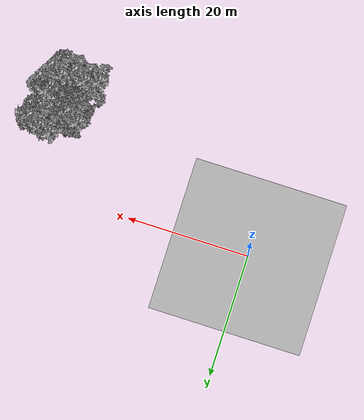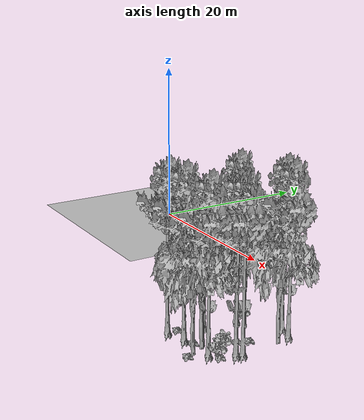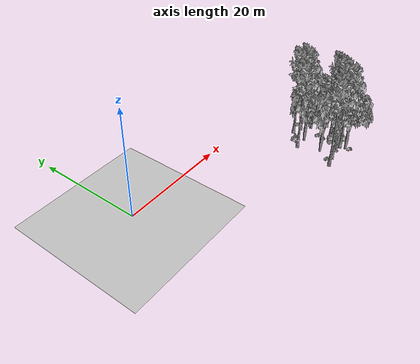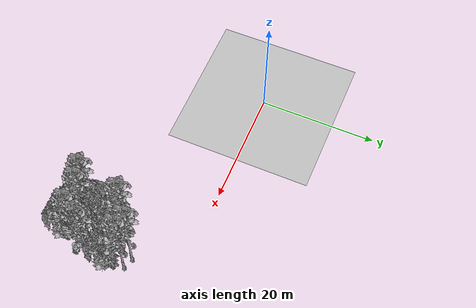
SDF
<sdf version="1.7">
 <world name="default">
  <model name="ground_plane">
   <static>1</static>
   <link name="link">
    <collision name="collision">
     <pose>-50 0 0 0 -0 0</pose>
     <geometry><plane><normal>0 0 1</normal><size>80 80</size></plane></geometry>
     <surface><contact><ode><min_depth>0.01</min_depth><max_vel>0</max_vel></ode></contact></surface>
    </collision>
    <visual name="grass">
     <cast_shadows>0</cast_shadows>
     <geometry>
      <mesh>
       <scale>0.46714285714285714 0.46714285714285714 0.1</scale>
       <uri>file://grass_plane/meshes/grass_plane.dae</uri>
      </mesh>
     </geometry>
    </visual>
   </link>
  </model>
  <model name="Tree 11">
   <static>1</static>
   <pose>36.81946621899988 -17.252960299036893 0 1.57079 -0 0</pose>
   <link name="link">
    <collision name="collision">
     <geometry><mesh><scale>3.5 5 3.5</scale><uri>model://tree_9/meshes/tree_9.obj</uri></mesh></geometry>
    </collision>
    <visual name="visual">
     <geometry><mesh><scale>3.5 5 3.5</scale><uri>model://tree_9/meshes/tree_9.obj</uri></mesh></geometry>
    </visual>
   </link>
  </model>
  <model name="Tree 36">
   <static>1</static>
   <pose>37.544806985473684 -8.624954095828592 0 1.57079 -0 0</pose>
   <link name="link">
    <collision name="collision">
     <geometry><mesh><scale>3.5 5 3.5</scale><uri>model://tree_9/meshes/tree_9.obj</uri></mesh></geometry>
    </collision>
    <visual name="visual">
     <geometry><mesh><scale>3.5 5 3.5</scale><uri>model://tree_9/meshes/tree_9.obj</uri></mesh></geometry>
    </visual>
   </link>
  </model>
  <model name="Tree 78">
   <static>1</static>
   <pose>30.828847995865956 -18.110764033775723 0 1.57079 -0 0</pose>
   <link name="link">
    <collision name="collision">
     <geometry><mesh><scale>3.5 5 3.5</scale><uri>model://tree_9/meshes/tree_9.obj</uri></mesh></geometry>
    </collision>
    <visual name="visual">
     <geometry><mesh><scale>3.5 5 3.5</scale><uri>model://tree_9/meshes/tree_9.obj</uri></mesh></geometry>
    </visual>
   </link>
  </model>
  <model name="Tree 79">
   <static>1</static>
   <pose>35.41900157429019 -17.171713973050878 0 1.57079 -0 0</pose>
   <link name="link">
    <collision name="collision">
     <geometry><mesh><scale>3.5 5 3.5</scale><uri>model://tree_2/meshes/tree_2.obj</uri></mesh></geometry>
    </collision>
    <visual name="visual">
     <geometry><mesh><scale>3.5 5 3.5</scale><uri>model://tree_2/meshes/tree_2.obj</uri></mesh></geometry>
    </visual>
   </link>
  </model>
  <model name="Tree 237">
   <static>1</static>
   <pose>35.78207238451293 -8.078938965559395 0 1.57079 -0 0</pose>
   <link name="link">
    <collision name="collision">
     <geometry><mesh><scale>3.5 5 3.5</scale><uri>model://tree_9/meshes/tree_9.obj</uri></mesh></geometry>
    </collision>
    <visual name="visual">
     <geometry><mesh><scale>3.5 5 3.5</scale><uri>model://tree_9/meshes/tree_9.obj</uri></mesh></geometry>
    </visual>
   </link>
  </model>
  <model name="Tree 245">
   <static>1</static>
   <pose>36.08224054830232 -18.51610686013272 0 1.57079 -0 0</pose>
   <link name="link">
    <collision name="collision">
     <geometry><mesh><scale>3.5 5 3.5</scale><uri>model://tree_2/meshes/tree_2.obj</uri></mesh></geometry>
    </collision>
    <visual name="visual">
     <geometry><mesh><scale>3.5 5 3.5</scale><uri>model://tree_2/meshes/tree_2.obj</uri></mesh></geometry>
    </visual>
   </link>
  </model>
  <model name="Tree 288">
   <static>1</static>
   <pose>38.21761933081663 -10.439752754390543 0 1.57079 -0 0</pose>
   <link name="link">
    <collision name="collision">
     <geometry><mesh><scale>3.5 5 3.5</scale><uri>model://tree_2/meshes/tree_2.obj</uri></mesh></geometry>
    </collision>
    <visual name="visual">
     <geometry><mesh><scale>3.5 5 3.5</scale><uri>model://tree_2/meshes/tree_2.obj</uri></mesh></geometry>
    </visual>
   </link>
  </model>
  <model name="Tree 298">
   <static>1</static>
   <pose>32.99734215134795 -17.55908026313201 0 1.57079 -0 0</pose>
   <link name="link">
    <collision name="collision">
     <geometry><mesh><scale>3.5 5 3.5</scale><uri>model://tree_9/meshes/tree_9.obj</uri></mesh></geometry>
    </collision>
    <visual name="visual">
     <geometry><mesh><scale>3.5 5 3.5</scale><uri>model://tree_9/meshes/tree_9.obj</uri></mesh></geometry>
    </visual>
   </link>
  </model>
  <model name="Tree 309">
   <static>1</static>
   <pose>32.714921375117456 -15.166031660455666 0 1.57079 -0 0</pose>
   <link name="link">
    <collision name="collision">
     <geometry><mesh><scale>3.5 5 3.5</scale><uri>model://tree_2/meshes/tree_2.obj</uri></mesh></geometry>
    </collision>
    <visual name="visual">
     <geometry><mesh><scale>3.5 5 3.5</scale><uri>model://tree_2/meshes/tree_2.obj</uri></mesh></geometry>
    </visual>
   </link>
  </model>
  <model name="Tree 390">
   <static>1</static>
   <pose>33.894361186854724 -11.274311922884188 0 1.57079 -0 0</pose>
   <link name="link">
    <collision name="collision">
     <geometry><mesh><scale>3.5 5 3.5</scale><uri>model://tree_2/meshes/tree_2.obj</uri></mesh></geometry>
    </collision>
    <visual name="visual">
     <geometry><mesh><scale>3.5 5 3.5</scale><uri>model://tree_2/meshes/tree_2.obj</uri></mesh></geometry>
    </visual>
   </link>
  </model>
  <model name="Tree 427">
   <static>1</static>
   <pose>35.17479377332634 -16.912582120461785 0 1.57079 -0 0</pose>
   <link name="link">
    <collision name="collision">
     <geometry><mesh><scale>3.5 5 3.5</scale><uri>model://tree_2/meshes/tree_2.obj</uri></mesh></geometry>
    </collision>
    <visual name="visual">
     <geometry><mesh><scale>3.5 5 3.5</scale><uri>model://tree_2/meshes/tree_2.obj</uri></mesh></geometry>
    </visual>
   </link>
  </model>
  <model name="Tree 468">
   <static>1</static>
   <pose>38.29341897186201 -14.434239362821124 0 1.57079 -0 0</pose>
   <link name="link">
    <collision name="collision">
     <geometry><mesh><scale>3.5 5 3.5</scale><uri>model://tree_9/meshes/tree_9.obj</uri></mesh></geometry>
    </collision>
    <visual name="visual">
     <geometry><mesh><scale>3.5 5 3.5</scale><uri>model://tree_9/meshes/tree_9.obj</uri></mesh></geometry>
    </visual>
   </link>
  </model>
  <model name="Tree 588">
   <static>1</static>
   <pose>38.05755111308807 -15.046158098459923 0 1.57079 -0 0</pose>
   <link name="link">
    <collision name="collision">
     <geometry><mesh><scale>3.5 5 3.5</scale><uri>model://tree_9/meshes/tree_9.obj</uri></mesh></geometry>
    </collision>
    <visual name="visual">
     <geometry><mesh><scale>3.5 5 3.5</scale><uri>model://tree_9/meshes/tree_9.obj</uri></mesh></geometry>
    </visual>
   </link>
  </model>
  <model name="Tree 601">
   <static>1</static>
   <pose>32.1537284608019 -10.981401257412493 0 1.57079 -0 0</pose>
   <link name="link">
    <collision name="collision">
     <geometry><mesh><scale>3.5 5 3.5</scale><uri>model://tree_9/meshes/tree_9.obj</uri></mesh></geometry>
    </collision>
    <visual name="visual">
     <geometry><mesh><scale>3.5 5 3.5</scale><uri>model://tree_9/meshes/tree_9.obj</uri></mesh></geometry>
    </visual>
   </link>
  </model>
  <model name="Bush 49">
   <static>1</static>
   <pose>38.078818950876965 -16.84201881925043 0 1.57079 -0 0</pose>
   <link name="link">
    <collision name="collision">
     <geometry><mesh><scale>2 2 2</scale><uri>model://bush_2/meshes/bush_2.obj</uri></mesh></geometry>
     <surface><contact><collide_without_contact>false</collide_without_contact></contact></surface>
    </collision>
    <visual name="visual">
     <geometry><mesh><scale>2 2 2</scale><uri>model://bush_2/meshes/bush_2.obj</uri></mesh></geometry>
    </visual>
   </link>
  </model>
  <model name="Bush 93">
   <static>1</static>
   <pose>31.29467788209159 -17.334511833245205 0 1.57079 -0 0</pose>
   <link name="link">
    <collision name="collision">
     <geometry><mesh><scale>2 2 2</scale><uri>model://bush_2/meshes/bush_2.obj</uri></mesh></geometry>
     <surface><contact><collide_without_contact>false</collide_without_contact></contact></surface>
    </collision>
    <visual name="visual">
     <geometry><mesh><scale>2 2 2</scale><uri>model://bush_2/meshes/bush_2.obj</uri></mesh></geometry>
    </visual>
   </link>
  </model>
  <model name="Bush 140">
   <static>1</static>
   <pose>34.42317466861961 -17.432440643077474 0 1.57079 -0 0</pose>
   <link name="link">
    <collision name="collision">
     <geometry><mesh><scale>2 2 2</scale><uri>model://bush_2/meshes/bush_2.obj</uri></mesh></geometry>
     <surface><contact><collide_without_contact>false</collide_without_contact></contact></surface>
    </collision>
    <visual name="visual">
     <geometry><mesh><scale>2 2 2</scale><uri>model://bush_2/meshes/bush_2.obj</uri></mesh></geometry>
    </visual>
   </link>
  </model>
  <model name="Bush 161">
   <static>1</static>
   <pose>36.39191534571154 -19.2489713888037 0 1.57079 -0 0</pose>
   <link name="link">
    <collision name="collision">
     <geometry><mesh><scale>2 2 2</scale><uri>model://bush_2/meshes/bush_2.obj</uri></mesh></geometry>
     <surface><contact><collide_without_contact>false</collide_without_contact></contact></surface>
    </collision>
    <visual name="visual">
     <geometry><mesh><scale>2 2 2</scale><uri>model://bush_2/meshes/bush_2.obj</uri></mesh></geometry>
    </visual>
   </link>
  </model>
  <model name="Bush 259">
   <static>1</static>
   <pose>36.47972363087335 -15.600098396497259 0 1.57079 -0 0</pose>
   <link name="link">
    <collision name="collision">
     <geometry><mesh><scale>2 2 2</scale><uri>model://bush_1/meshes/bush_1.obj</uri></mesh></geometry>
     <surface><contact><collide_without_contact>false</collide_without_contact></contact></surface>
    </collision>
    <visual name="visual">
     <geometry><mesh><scale>2 2 2</scale><uri>model://bush_1/meshes/bush_1.obj</uri></mesh></geometry>
    </visual>
   </link>
  </model>
  <model name="Bush 314">
   <static>1</static>
   <pose>36.363434364639176 -13.82550572815422 0 1.57079 -0 0</pose>
   <link name="link">
    <collision name="collision">
     <geometry><mesh><scale>2 2 2</scale><uri>model://bush_2/meshes/bush_2.obj</uri></mesh></geometry>
     <surface><contact><collide_without_contact>false</collide_without_contact></contact></surface>
    </collision>
    <visual name="visual">
     <geometry><mesh><scale>2 2 2</scale><uri>model://bush_2/meshes/bush_2.obj</uri></mesh></geometry>
    </visual>
   </link>
  </model>
  <model name="Bush 400">
   <static>1</static>
   <pose>37.61493535682315 -16.88164326775447 0 1.57079 -0 0</pose>
   <link name="link">
    <collision name="collision">
     <geometry><mesh><scale>2 2 2</scale><uri>model://bush_1/meshes/bush_1.obj</uri></mesh></geometry>
     <surface><contact><collide_without_contact>false</collide_without_contact></contact></surface>
    </collision>
    <visual name="visual">
     <geometry><mesh><scale>2 2 2</scale><uri>model://bush_1/meshes/bush_1.obj</uri></mesh></geometry>
    </visual>
   </link>
  </model>
  <model name="Bush 485">
   <static>1</static>
   <pose>32.1873871353865 -10.519039202449278 0 1.57079 -0 0</pose>
   <link name="link">
    <collision name="collision">
     <geometry><mesh><scale>2 2 2</scale><uri>model://bush_1/meshes/bush_1.obj</uri></mesh></geometry>
     <surface><contact><collide_without_contact>false</collide_without_contact></contact></surface>
    </collision>
    <visual name="visual">
     <geometry><mesh><scale>2 2 2</scale><uri>model://bush_1/meshes/bush_1.obj</uri></mesh></geometry>
    </visual>
   </link>
  </model>
  <model name="Bush 519">
   <static>1</static>
   <pose>36.69628765285901 -12.655935225076902 0 1.57079 -0 0</pose>
   <link name="link">
    <collision name="collision">
     <geometry><mesh><scale>2 2 2</scale><uri>model://bush_2/meshes/bush_2.obj</uri></mesh></geometry>
     <surface><contact><collide_without_contact>false</collide_without_contact></contact></surface>
    </collision>
    <visual name="visual">
     <geometry><mesh><scale>2 2 2</scale><uri>model://bush_2/meshes/bush_2.obj</uri></mesh></geometry>
    </visual>
   </link>
  </model>
 </world>
</sdf>
